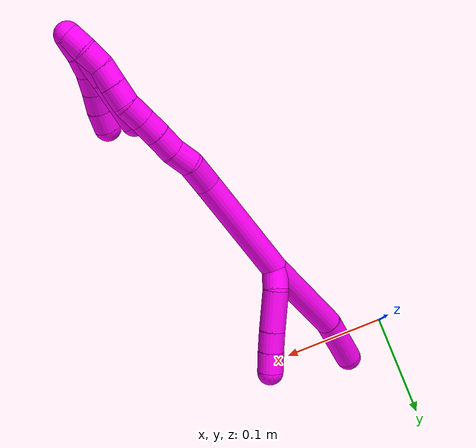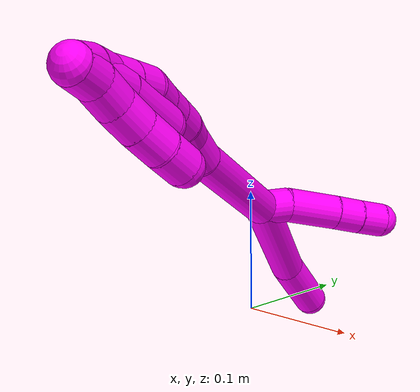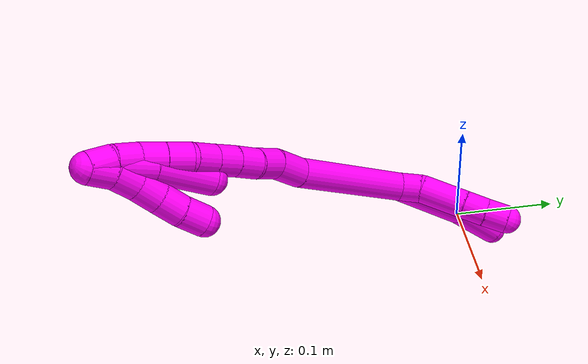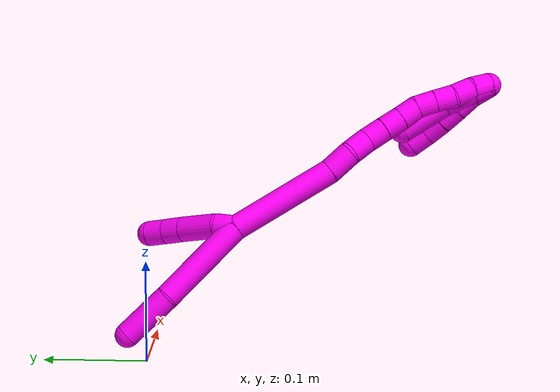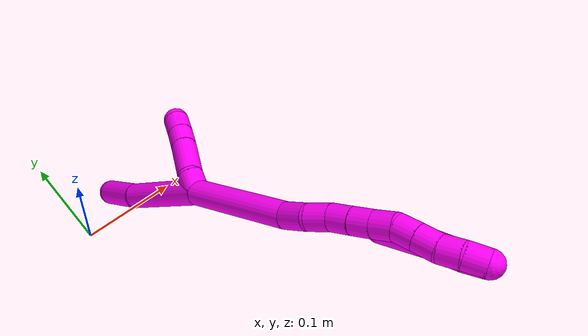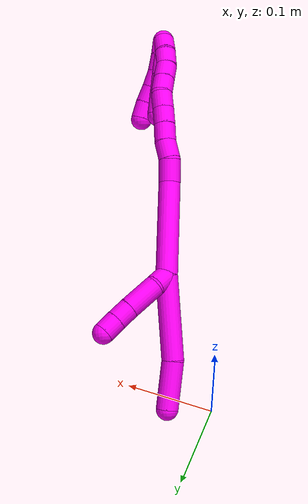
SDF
<sdf version="1.7">
 <world name="default">
  <model name="10">
   <static>0</static>
   <link name="10">
    <collision name="collision-cylinder-e_1_2_8">
     <pose>0.000406 -0.000766 -0.047744 3.12555 0.008507 0.975188</pose>
     <geometry><cylinder><radius>0.0125</radius><length>0.095505</length></cylinder></geometry>
     <surface>
      <friction><ode><mu>1.16</mu><mu2>1.16</mu2><slip1>0</slip1><slip2>0</slip2></ode></friction>
      <contact><ode><kp>1e+06</kp><kd>1</kd><max_vel>0</max_vel><min_depth>0.001</min_depth></ode></contact>
     </surface>
    </collision>
    <visual name="visual-cylinder-e_1_2_8">
     <pose>0.000406 -0.000766 -0.047744 3.12555 0.008507 0.975188</pose>
     <geometry><cylinder><radius>0.0125</radius><length>0.095505</length></cylinder></geometry>
     <material><ambient>1 0 0.964706 1</ambient></material>
    </visual>
    <collision name="collision-cylinder-e_2_8_6">
     <pose>0.005719 0.00039 -0.122222 -3.06983 0.181077 -2.38856</pose>
     <geometry><cylinder><radius>0.0125</radius><length>0.054495</length></cylinder></geometry>
     <surface>
      <friction><ode><mu>1.16</mu><mu2>1.16</mu2><slip1>0</slip1><slip2>0</slip2></ode></friction>
      <contact><ode><kp>1e+06</kp><kd>1</kd><max_vel>0</max_vel><min_depth>0.001</min_depth></ode></contact>
     </surface>
    </collision>
    <visual name="visual-cylinder-e_2_8_6">
     <pose>0.005719 0.00039 -0.122222 -3.06983 0.181077 -2.38856</pose>
     <geometry><cylinder><radius>0.0125</radius><length>0.054495</length></cylinder></geometry>
     <material><ambient>1 0 0.964706 1</ambient></material>
    </visual>
    <collision name="collision-cylinder-e_1_2_9">
     <pose>0.002044 0.008286 -0.00549 -2.15594 0.202794 -0.374484</pose>
     <geometry><cylinder><radius>0.0125</radius><length>0.020296</length></cylinder></geometry>
     <surface>
      <friction><ode><mu>1.16</mu><mu2>1.16</mu2><slip1>0</slip1><slip2>0</slip2></ode></friction>
      <contact><ode><kp>1e+06</kp><kd>1</kd><max_vel>0</max_vel><min_depth>0.001</min_depth></ode></contact>
     </surface>
    </collision>
    <visual name="visual-cylinder-e_1_2_9">
     <pose>0.002044 0.008286 -0.00549 -2.15594 0.202794 -0.374484</pose>
     <geometry><cylinder><radius>0.0125</radius><length>0.020296</length></cylinder></geometry>
     <material><ambient>1 0 0.964706 1</ambient></material>
    </visual>
    <collision name="collision-cylinder-e_2_9_10">
     <pose>0.012459 0.030172 -0.02275 -2.28419 0.435647 -0.901967</pose>
     <geometry><cylinder><radius>0.0125</radius><length>0.039676</length></cylinder></geometry>
     <surface>
      <friction><ode><mu>1.16</mu><mu2>1.16</mu2><slip1>0</slip1><slip2>0</slip2></ode></friction>
      <contact><ode><kp>1e+06</kp><kd>1</kd><max_vel>0</max_vel><min_depth>0.001</min_depth></ode></contact>
     </surface>
    </collision>
    <visual name="visual-cylinder-e_2_9_10">
     <pose>0.012459 0.030172 -0.02275 -2.28419 0.435647 -0.901967</pose>
     <geometry><cylinder><radius>0.0125</radius><length>0.039676</length></cylinder></geometry>
     <material><ambient>1 0 0.964706 1</ambient></material>
    </visual>
    <collision name="collision-cylinder-e_3_10_11">
     <pose>0.024926 0.050443 -0.040746 -2.32175 0.421769 -0.915474</pose>
     <geometry><cylinder><radius>0.0125</radius><length>0.020004</length></cylinder></geometry>
     <surface>
      <friction><ode><mu>1.16</mu><mu2>1.16</mu2><slip1>0</slip1><slip2>0</slip2></ode></friction>
      <contact><ode><kp>1e+06</kp><kd>1</kd><max_vel>0</max_vel><min_depth>0.001</min_depth></ode></contact>
     </surface>
    </collision>
    <visual name="visual-cylinder-e_3_10_11">
     <pose>0.024926 0.050443 -0.040746 -2.32175 0.421769 -0.915474</pose>
     <geometry><cylinder><radius>0.0125</radius><length>0.020004</length></cylinder></geometry>
     <material><ambient>1 0 0.964706 1</ambient></material>
    </visual>
    <collision name="collision-cylinder-e_4_11_5">
     <pose>0.032779 0.063879 -0.053324 -2.3246 0.384826 -0.845871</pose>
     <geometry><cylinder><radius>0.0125</radius><length>0.020024</length></cylinder></geometry>
     <surface>
      <friction><ode><mu>1.16</mu><mu2>1.16</mu2><slip1>0</slip1><slip2>0</slip2></ode></friction>
      <contact><ode><kp>1e+06</kp><kd>1</kd><max_vel>0</max_vel><min_depth>0.001</min_depth></ode></contact>
     </surface>
    </collision>
    <visual name="visual-cylinder-e_4_11_5">
     <pose>0.032779 0.063879 -0.053324 -2.3246 0.384826 -0.845871</pose>
     <geometry><cylinder><radius>0.0125</radius><length>0.020024</length></cylinder></geometry>
     <material><ambient>1 0 0.964706 1</ambient></material>
    </visual>
    <collision name="collision-cylinder-e_1_2_12">
     <pose>0.003166 -0.012155 0.053238 0.224469 0.057907 0.006528</pose>
     <geometry><cylinder><radius>0.0125</radius><length>0.109399</length></cylinder></geometry>
     <surface>
      <friction><ode><mu>1.16</mu><mu2>1.16</mu2><slip1>0</slip1><slip2>0</slip2></ode></friction>
      <contact><ode><kp>1e+06</kp><kd>1</kd><max_vel>0</max_vel><min_depth>0.001</min_depth></ode></contact>
     </surface>
    </collision>
    <visual name="visual-cylinder-e_1_2_12">
     <pose>0.003166 -0.012155 0.053238 0.224469 0.057907 0.006528</pose>
     <geometry><cylinder><radius>0.0125</radius><length>0.109399</length></cylinder></geometry>
     <material><ambient>1 0 0.964706 1</ambient></material>
    </visual>
    <collision name="collision-cylinder-e_2_12_13">
     <pose>0.005644 -0.025064 0.120101 0.055281 -0.050321 -0.001392</pose>
     <geometry><cylinder><radius>0.0125</radius><length>0.027327</length></cylinder></geometry>
     <surface>
      <friction><ode><mu>1.16</mu><mu2>1.16</mu2><slip1>0</slip1><slip2>0</slip2></ode></friction>
      <contact><ode><kp>1e+06</kp><kd>1</kd><max_vel>0</max_vel><min_depth>0.001</min_depth></ode></contact>
     </surface>
    </collision>
    <visual name="visual-cylinder-e_2_12_13">
     <pose>0.005644 -0.025064 0.120101 0.055281 -0.050321 -0.001392</pose>
     <geometry><cylinder><radius>0.0125</radius><length>0.027327</length></cylinder></geometry>
     <material><ambient>1 0 0.964706 1</ambient></material>
    </visual>
    <collision name="collision-cylinder-e_3_13_14">
     <pose>0.007637 -0.026345 0.144359 0.049505 0.24667 0.006138</pose>
     <geometry><cylinder><radius>0.0125</radius><length>0.021956</length></cylinder></geometry>
     <surface>
      <friction><ode><mu>1.16</mu><mu2>1.16</mu2><slip1>0</slip1><slip2>0</slip2></ode></friction>
      <contact><ode><kp>1e+06</kp><kd>1</kd><max_vel>0</max_vel><min_depth>0.001</min_depth></ode></contact>
     </surface>
    </collision>
    <visual name="visual-cylinder-e_3_13_14">
     <pose>0.007637 -0.026345 0.144359 0.049505 0.24667 0.006138</pose>
     <geometry><cylinder><radius>0.0125</radius><length>0.021956</length></cylinder></geometry>
     <material><ambient>1 0 0.964706 1</ambient></material>
    </visual>
    <collision name="collision-cylinder-e_4_14_15">
     <pose>0.01145 -0.028615 0.165237 0.168539 0.108494 0.009173</pose>
     <geometry><cylinder><radius>0.0125</radius><length>0.020909</length></cylinder></geometry>
     <surface>
      <friction><ode><mu>1.16</mu><mu2>1.16</mu2><slip1>0</slip1><slip2>0</slip2></ode></friction>
      <contact><ode><kp>1e+06</kp><kd>1</kd><max_vel>0</max_vel><min_depth>0.001</min_depth></ode></contact>
     </surface>
    </collision>
    <visual name="visual-cylinder-e_4_14_15">
     <pose>0.01145 -0.028615 0.165237 0.168539 0.108494 0.009173</pose>
     <geometry><cylinder><radius>0.0125</radius><length>0.020909</length></cylinder></geometry>
     <material><ambient>1 0 0.964706 1</ambient></material>
    </visual>
    <collision name="collision-cylinder-e_5_15_16">
     <pose>0.014139 -0.032047 0.185314 0.170086 0.154809 0.013223</pose>
     <geometry><cylinder><radius>0.0125</radius><length>0.020193</length></cylinder></geometry>
     <surface>
      <friction><ode><mu>1.16</mu><mu2>1.16</mu2><slip1>0</slip1><slip2>0</slip2></ode></friction>
      <contact><ode><kp>1e+06</kp><kd>1</kd><max_vel>0</max_vel><min_depth>0.001</min_depth></ode></contact>
     </surface>
    </collision>
    <visual name="visual-cylinder-e_5_15_16">
     <pose>0.014139 -0.032047 0.185314 0.170086 0.154809 0.013223</pose>
     <geometry><cylinder><radius>0.0125</radius><length>0.020193</length></cylinder></geometry>
     <material><ambient>1 0 0.964706 1</ambient></material>
    </visual>
    <collision name="collision-cylinder-e_6_16_17">
     <pose>0.017241 -0.035107 0.205031 0.137879 0.153644 0.01063</pose>
     <geometry><cylinder><radius>0.0125</radius><length>0.020197</length></cylinder></geometry>
     <surface>
      <friction><ode><mu>1.16</mu><mu2>1.16</mu2><slip1>0</slip1><slip2>0</slip2></ode></friction>
      <contact><ode><kp>1e+06</kp><kd>1</kd><max_vel>0</max_vel><min_depth>0.001</min_depth></ode></contact>
     </surface>
    </collision>
    <visual name="visual-cylinder-e_6_16_17">
     <pose>0.017241 -0.035107 0.205031 0.137879 0.153644 0.01063</pose>
     <geometry><cylinder><radius>0.0125</radius><length>0.020197</length></cylinder></geometry>
     <material><ambient>1 0 0.964706 1</ambient></material>
    </visual>
    <collision name="collision-cylinder-e_7_17_18">
     <pose>0.019853 -0.040828 0.223867 0.452317 0.106778 0.024591</pose>
     <geometry><cylinder><radius>0.0125</radius><length>0.020018</length></cylinder></geometry>
     <surface>
      <friction><ode><mu>1.16</mu><mu2>1.16</mu2><slip1>0</slip1><slip2>0</slip2></ode></friction>
      <contact><ode><kp>1e+06</kp><kd>1</kd><max_vel>0</max_vel><min_depth>0.001</min_depth></ode></contact>
     </surface>
    </collision>
    <visual name="visual-cylinder-e_7_17_18">
     <pose>0.019853 -0.040828 0.223867 0.452317 0.106778 0.024591</pose>
     <geometry><cylinder><radius>0.0125</radius><length>0.020018</length></cylinder></geometry>
     <material><ambient>1 0 0.964706 1</ambient></material>
    </visual>
    <collision name="collision-cylinder-e_8_18_19">
     <pose>0.022064 -0.049726 0.241651 0.475522 0.114634 0.02781</pose>
     <geometry><cylinder><radius>0.0125</radius><length>0.020001</length></cylinder></geometry>
     <surface>
      <friction><ode><mu>1.16</mu><mu2>1.16</mu2><slip1>0</slip1><slip2>0</slip2></ode></friction>
      <contact><ode><kp>1e+06</kp><kd>1</kd><max_vel>0</max_vel><min_depth>0.001</min_depth></ode></contact>
     </surface>
    </collision>
    <visual name="visual-cylinder-e_8_18_19">
     <pose>0.022064 -0.049726 0.241651 0.475522 0.114634 0.02781</pose>
     <geometry><cylinder><radius>0.0125</radius><length>0.020001</length></cylinder></geometry>
     <material><ambient>1 0 0.964706 1</ambient></material>
    </visual>
    <collision name="collision-cylinder-e_9_19_20">
     <pose>0.025595 -0.057189 0.259747 0.304818 0.241078 0.037206</pose>
     <geometry><cylinder><radius>0.0125</radius><length>0.02</length></cylinder></geometry>
     <surface>
      <friction><ode><mu>1.16</mu><mu2>1.16</mu2><slip1>0</slip1><slip2>0</slip2></ode></friction>
      <contact><ode><kp>1e+06</kp><kd>1</kd><max_vel>0</max_vel><min_depth>0.001</min_depth></ode></contact>
     </surface>
    </collision>
    <visual name="visual-cylinder-e_9_19_20">
     <pose>0.025595 -0.057189 0.259747 0.304818 0.241078 0.037206</pose>
     <geometry><cylinder><radius>0.0125</radius><length>0.02</length></cylinder></geometry>
     <material><ambient>1 0 0.964706 1</ambient></material>
    </visual>
    <collision name="collision-cylinder-e_10_20_1">
     <pose>0.031773 -0.063893 0.277453 0.421936 0.388715 0.084259</pose>
     <geometry><cylinder><radius>0.0125</radius><length>0.02</length></cylinder></geometry>
     <surface>
      <friction><ode><mu>1.16</mu><mu2>1.16</mu2><slip1>0</slip1><slip2>0</slip2></ode></friction>
      <contact><ode><kp>1e+06</kp><kd>1</kd><max_vel>0</max_vel><min_depth>0.001</min_depth></ode></contact>
     </surface>
    </collision>
    <visual name="visual-cylinder-e_10_20_1">
     <pose>0.031773 -0.063893 0.277453 0.421936 0.388715 0.084259</pose>
     <geometry><cylinder><radius>0.0125</radius><length>0.02</length></cylinder></geometry>
     <material><ambient>1 0 0.964706 1</ambient></material>
    </visual>
    <collision name="collision-cylinder-e_1_1_21">
     <pose>0.035777 -0.065049 0.276251 -2.87505 0.021394 -0.159248</pose>
     <geometry><cylinder><radius>0.0125</radius><length>0.02</length></cylinder></geometry>
     <surface>
      <friction><ode><mu>1.16</mu><mu2>1.16</mu2><slip1>0</slip1><slip2>0</slip2></ode></friction>
      <contact><ode><kp>1e+06</kp><kd>1</kd><max_vel>0</max_vel><min_depth>0.001</min_depth></ode></contact>
     </surface>
    </collision>
    <visual name="visual-cylinder-e_1_1_21">
     <pose>0.035777 -0.065049 0.276251 -2.87505 0.021394 -0.159248</pose>
     <geometry><cylinder><radius>0.0125</radius><length>0.02</length></cylinder></geometry>
     <material><ambient>1 0 0.964706 1</ambient></material>
    </visual>
    <collision name="collision-cylinder-e_2_21_22">
     <pose>0.038383 -0.061243 0.256967 -3.02047 0.24156 -2.21494</pose>
     <geometry><cylinder><radius>0.0125</radius><length>0.02</length></cylinder></geometry>
     <surface>
      <friction><ode><mu>1.16</mu><mu2>1.16</mu2><slip1>0</slip1><slip2>0</slip2></ode></friction>
      <contact><ode><kp>1e+06</kp><kd>1</kd><max_vel>0</max_vel><min_depth>0.001</min_depth></ode></contact>
     </surface>
    </collision>
    <visual name="visual-cylinder-e_2_21_22">
     <pose>0.038383 -0.061243 0.256967 -3.02047 0.24156 -2.21494</pose>
     <geometry><cylinder><radius>0.0125</radius><length>0.02</length></cylinder></geometry>
     <material><ambient>1 0 0.964706 1</ambient></material>
    </visual>
    <collision name="collision-cylinder-e_3_22_23">
     <pose>0.044435 -0.058363 0.238181 -2.95716 0.374736 -2.23395</pose>
     <geometry><cylinder><radius>0.0125</radius><length>0.02</length></cylinder></geometry>
     <surface>
      <friction><ode><mu>1.16</mu><mu2>1.16</mu2><slip1>0</slip1><slip2>0</slip2></ode></friction>
      <contact><ode><kp>1e+06</kp><kd>1</kd><max_vel>0</max_vel><min_depth>0.001</min_depth></ode></contact>
     </surface>
    </collision>
    <visual name="visual-cylinder-e_3_22_23">
     <pose>0.044435 -0.058363 0.238181 -2.95716 0.374736 -2.23395</pose>
     <geometry><cylinder><radius>0.0125</radius><length>0.02</length></cylinder></geometry>
     <material><ambient>1 0 0.964706 1</ambient></material>
    </visual>
    <collision name="collision-cylinder-e_4_23_24">
     <pose>0.051948 -0.054342 0.220099 -2.88808 0.395426 -2.00842</pose>
     <geometry><cylinder><radius>0.0125</radius><length>0.02</length></cylinder></geometry>
     <surface>
      <friction><ode><mu>1.16</mu><mu2>1.16</mu2><slip1>0</slip1><slip2>0</slip2></ode></friction>
      <contact><ode><kp>1e+06</kp><kd>1</kd><max_vel>0</max_vel><min_depth>0.001</min_depth></ode></contact>
     </surface>
    </collision>
    <visual name="visual-cylinder-e_4_23_24">
     <pose>0.051948 -0.054342 0.220099 -2.88808 0.395426 -2.00842</pose>
     <geometry><cylinder><radius>0.0125</radius><length>0.02</length></cylinder></geometry>
     <material><ambient>1 0 0.964706 1</ambient></material>
    </visual>
    <collision name="collision-cylinder-e_5_24_4">
     <pose>0.058365 -0.049627 0.201803 -2.89057 0.259469 -1.60425</pose>
     <geometry><cylinder><radius>0.0125</radius><length>0.02</length></cylinder></geometry>
     <surface>
      <friction><ode><mu>1.16</mu><mu2>1.16</mu2><slip1>0</slip1><slip2>0</slip2></ode></friction>
      <contact><ode><kp>1e+06</kp><kd>1</kd><max_vel>0</max_vel><min_depth>0.001</min_depth></ode></contact>
     </surface>
    </collision>
    <visual name="visual-cylinder-e_5_24_4">
     <pose>0.058365 -0.049627 0.201803 -2.89057 0.259469 -1.60425</pose>
     <geometry><cylinder><radius>0.0125</radius><length>0.02</length></cylinder></geometry>
     <material><ambient>1 0 0.964706 1</ambient></material>
    </visual>
    <collision name="collision-cylinder-e_1_1_25">
     <pose>0.032932 -0.064723 0.276676 -2.831 -0.265318 1.41171</pose>
     <geometry><cylinder><radius>0.0125</radius><length>0.020068</length></cylinder></geometry>
     <surface>
      <friction><ode><mu>1.16</mu><mu2>1.16</mu2><slip1>0</slip1><slip2>0</slip2></ode></friction>
      <contact><ode><kp>1e+06</kp><kd>1</kd><max_vel>0</max_vel><min_depth>0.001</min_depth></ode></contact>
     </surface>
    </collision>
    <visual name="visual-cylinder-e_1_1_25">
     <pose>0.032932 -0.064723 0.276676 -2.831 -0.265318 1.41171</pose>
     <geometry><cylinder><radius>0.0125</radius><length>0.020068</length></cylinder></geometry>
     <material><ambient>1 0 0.964706 1</ambient></material>
    </visual>
    <collision name="collision-cylinder-e_2_25_26">
     <pose>0.028901 -0.056386 0.252905 -2.78759 -0.089982 0.493141</pose>
     <geometry><cylinder><radius>0.0125</radius><length>0.031153</length></cylinder></geometry>
     <surface>
      <friction><ode><mu>1.16</mu><mu2>1.16</mu2><slip1>0</slip1><slip2>0</slip2></ode></friction>
      <contact><ode><kp>1e+06</kp><kd>1</kd><max_vel>0</max_vel><min_depth>0.001</min_depth></ode></contact>
     </surface>
    </collision>
    <visual name="visual-cylinder-e_2_25_26">
     <pose>0.028901 -0.056386 0.252905 -2.78759 -0.089982 0.493141</pose>
     <geometry><cylinder><radius>0.0125</radius><length>0.031153</length></cylinder></geometry>
     <material><ambient>1 0 0.964706 1</ambient></material>
    </visual>
    <collision name="collision-cylinder-e_3_26_3">
     <pose>0.028265 -0.045405 0.214628 -2.90965 0.031327 -0.267338</pose>
     <geometry><cylinder><radius>0.0125</radius><length>0.048779</length></cylinder></geometry>
     <surface>
      <friction><ode><mu>1.16</mu><mu2>1.16</mu2><slip1>0</slip1><slip2>0</slip2></ode></friction>
      <contact><ode><kp>1e+06</kp><kd>1</kd><max_vel>0</max_vel><min_depth>0.001</min_depth></ode></contact>
     </surface>
    </collision>
    <visual name="visual-cylinder-e_3_26_3">
     <pose>0.028265 -0.045405 0.214628 -2.90965 0.031327 -0.267338</pose>
     <geometry><cylinder><radius>0.0125</radius><length>0.048779</length></cylinder></geometry>
     <material><ambient>1 0 0.964706 1</ambient></material>
    </visual>
    <collision name="collision-sphere-3">
     <pose>0.029029 -0.039801 0.190903 0 -0 0</pose>
     <geometry><sphere><radius>0.0125</radius></sphere></geometry>
     <surface>
      <friction><ode><mu>1.16</mu><mu2>1.16</mu2><slip1>0</slip1><slip2>0</slip2></ode></friction>
      <contact><ode><kp>1e+06</kp><kd>1</kd><max_vel>0</max_vel><min_depth>0.001</min_depth></ode></contact>
     </surface>
    </collision>
    <visual name="visual-sphere-3">
     <pose>0.029029 -0.039801 0.190903 0 -0 0</pose>
     <geometry><sphere><radius>0.0125</radius></sphere></geometry>
     <material><ambient>1 0 0.964706 1</ambient></material>
    </visual>
    <collision name="collision-sphere-26">
     <pose>0.027501 -0.051008 0.238353 0 -0 0</pose>
     <geometry><sphere><radius>0.0125</radius></sphere></geometry>
     <surface>
      <friction><ode><mu>1.16</mu><mu2>1.16</mu2><slip1>0</slip1><slip2>0</slip2></ode></friction>
      <contact><ode><kp>1e+06</kp><kd>1</kd><max_vel>0</max_vel><min_depth>0.001</min_depth></ode></contact>
     </surface>
    </collision>
    <visual name="visual-sphere-26">
     <pose>0.027501 -0.051008 0.238353 0 -0 0</pose>
     <geometry><sphere><radius>0.0125</radius></sphere></geometry>
     <material><ambient>1 0 0.964706 1</ambient></material>
    </visual>
    <collision name="collision-sphere-25">
     <pose>0.030301 -0.061764 0.267456 0 -0 0</pose>
     <geometry><sphere><radius>0.0125</radius></sphere></geometry>
     <surface>
      <friction><ode><mu>1.16</mu><mu2>1.16</mu2><slip1>0</slip1><slip2>0</slip2></ode></friction>
      <contact><ode><kp>1e+06</kp><kd>1</kd><max_vel>0</max_vel><min_depth>0.001</min_depth></ode></contact>
     </surface>
    </collision>
    <visual name="visual-sphere-25">
     <pose>0.030301 -0.061764 0.267456 0 -0 0</pose>
     <geometry><sphere><radius>0.0125</radius></sphere></geometry>
     <material><ambient>1 0 0.964706 1</ambient></material>
    </visual>
    <collision name="collision-sphere-4">
     <pose>0.060931 -0.047226 0.192441 0 -0 0</pose>
     <geometry><sphere><radius>0.0125</radius></sphere></geometry>
     <surface>
      <friction><ode><mu>1.16</mu><mu2>1.16</mu2><slip1>0</slip1><slip2>0</slip2></ode></friction>
      <contact><ode><kp>1e+06</kp><kd>1</kd><max_vel>0</max_vel><min_depth>0.001</min_depth></ode></contact>
     </surface>
    </collision>
    <visual name="visual-sphere-4">
     <pose>0.060931 -0.047226 0.192441 0 -0 0</pose>
     <geometry><sphere><radius>0.0125</radius></sphere></geometry>
     <material><ambient>1 0 0.964706 1</ambient></material>
    </visual>
    <collision name="collision-sphere-24">
     <pose>0.0558 -0.052027 0.211166 0 -0 0</pose>
     <geometry><sphere><radius>0.0125</radius></sphere></geometry>
     <surface>
      <friction><ode><mu>1.16</mu><mu2>1.16</mu2><slip1>0</slip1><slip2>0</slip2></ode></friction>
      <contact><ode><kp>1e+06</kp><kd>1</kd><max_vel>0</max_vel><min_depth>0.001</min_depth></ode></contact>
     </surface>
    </collision>
    <visual name="visual-sphere-24">
     <pose>0.0558 -0.052027 0.211166 0 -0 0</pose>
     <geometry><sphere><radius>0.0125</radius></sphere></geometry>
     <material><ambient>1 0 0.964706 1</ambient></material>
    </visual>
    <collision name="collision-sphere-23">
     <pose>0.048096 -0.056656 0.229032 0 -0 0</pose>
     <geometry><sphere><radius>0.0125</radius></sphere></geometry>
     <surface>
      <friction><ode><mu>1.16</mu><mu2>1.16</mu2><slip1>0</slip1><slip2>0</slip2></ode></friction>
      <contact><ode><kp>1e+06</kp><kd>1</kd><max_vel>0</max_vel><min_depth>0.001</min_depth></ode></contact>
     </surface>
    </collision>
    <visual name="visual-sphere-23">
     <pose>0.048096 -0.056656 0.229032 0 -0 0</pose>
     <geometry><sphere><radius>0.0125</radius></sphere></geometry>
     <material><ambient>1 0 0.964706 1</ambient></material>
    </visual>
    <collision name="collision-sphere-22">
     <pose>0.040775 -0.06007 0.247329 0 -0 0</pose>
     <geometry><sphere><radius>0.0125</radius></sphere></geometry>
     <surface>
      <friction><ode><mu>1.16</mu><mu2>1.16</mu2><slip1>0</slip1><slip2>0</slip2></ode></friction>
      <contact><ode><kp>1e+06</kp><kd>1</kd><max_vel>0</max_vel><min_depth>0.001</min_depth></ode></contact>
     </surface>
    </collision>
    <visual name="visual-sphere-22">
     <pose>0.040775 -0.06007 0.247329 0 -0 0</pose>
     <geometry><sphere><radius>0.0125</radius></sphere></geometry>
     <material><ambient>1 0 0.964706 1</ambient></material>
    </visual>
    <collision name="collision-sphere-21">
     <pose>0.035991 -0.062416 0.266606 0 -0 0</pose>
     <geometry><sphere><radius>0.0125</radius></sphere></geometry>
     <surface>
      <friction><ode><mu>1.16</mu><mu2>1.16</mu2><slip1>0</slip1><slip2>0</slip2></ode></friction>
      <contact><ode><kp>1e+06</kp><kd>1</kd><max_vel>0</max_vel><min_depth>0.001</min_depth></ode></contact>
     </surface>
    </collision>
    <visual name="visual-sphere-21">
     <pose>0.035991 -0.062416 0.266606 0 -0 0</pose>
     <geometry><sphere><radius>0.0125</radius></sphere></geometry>
     <material><ambient>1 0 0.964706 1</ambient></material>
    </visual>
    <collision name="collision-sphere-1">
     <pose>0.035563 -0.067683 0.285895 0 -0 0</pose>
     <geometry><sphere><radius>0.0125</radius></sphere></geometry>
     <surface>
      <friction><ode><mu>1.16</mu><mu2>1.16</mu2><slip1>0</slip1><slip2>0</slip2></ode></friction>
      <contact><ode><kp>1e+06</kp><kd>1</kd><max_vel>0</max_vel><min_depth>0.001</min_depth></ode></contact>
     </surface>
    </collision>
    <visual name="visual-sphere-1">
     <pose>0.035563 -0.067683 0.285895 0 -0 0</pose>
     <geometry><sphere><radius>0.0125</radius></sphere></geometry>
     <material><ambient>1 0 0.964706 1</ambient></material>
    </visual>
    <collision name="collision-sphere-11">
     <pose>0.02902 0.057114 -0.046973 0 -0 0</pose>
     <geometry><sphere><radius>0.0125</radius></sphere></geometry>
     <surface>
      <friction><ode><mu>1.16</mu><mu2>1.16</mu2><slip1>0</slip1><slip2>0</slip2></ode></friction>
      <contact><ode><kp>1e+06</kp><kd>1</kd><max_vel>0</max_vel><min_depth>0.001</min_depth></ode></contact>
     </surface>
    </collision>
    <visual name="visual-sphere-11">
     <pose>0.02902 0.057114 -0.046973 0 -0 0</pose>
     <geometry><sphere><radius>0.0125</radius></sphere></geometry>
     <material><ambient>1 0 0.964706 1</ambient></material>
    </visual>
    <collision name="collision-sphere-10">
     <pose>0.020831 0.043772 -0.034519 0 -0 0</pose>
     <geometry><sphere><radius>0.0125</radius></sphere></geometry>
     <surface>
      <friction><ode><mu>1.16</mu><mu2>1.16</mu2><slip1>0</slip1><slip2>0</slip2></ode></friction>
      <contact><ode><kp>1e+06</kp><kd>1</kd><max_vel>0</max_vel><min_depth>0.001</min_depth></ode></contact>
     </surface>
    </collision>
    <visual name="visual-sphere-10">
     <pose>0.020831 0.043772 -0.034519 0 -0 0</pose>
     <geometry><sphere><radius>0.0125</radius></sphere></geometry>
     <material><ambient>1 0 0.964706 1</ambient></material>
    </visual>
    <collision name="collision-sphere-6">
     <pose>0.010626 0.002311 -0.148955 0 -0 0</pose>
     <geometry><sphere><radius>0.0125</radius></sphere></geometry>
     <surface>
      <friction><ode><mu>1.16</mu><mu2>1.16</mu2><slip1>0</slip1><slip2>0</slip2></ode></friction>
      <contact><ode><kp>1e+06</kp><kd>1</kd><max_vel>0</max_vel><min_depth>0.001</min_depth></ode></contact>
     </surface>
    </collision>
    <visual name="visual-sphere-6">
     <pose>0.010626 0.002311 -0.148955 0 -0 0</pose>
     <geometry><sphere><radius>0.0125</radius></sphere></geometry>
     <material><ambient>1 0 0.964706 1</ambient></material>
    </visual>
    <collision name="collision-sphere-9">
     <pose>0.004088 0.016573 -0.01098 0 -0 0</pose>
     <geometry><sphere><radius>0.0125</radius></sphere></geometry>
     <surface>
      <friction><ode><mu>1.16</mu><mu2>1.16</mu2><slip1>0</slip1><slip2>0</slip2></ode></friction>
      <contact><ode><kp>1e+06</kp><kd>1</kd><max_vel>0</max_vel><min_depth>0.001</min_depth></ode></contact>
     </surface>
    </collision>
    <visual name="visual-sphere-9">
     <pose>0.004088 0.016573 -0.01098 0 -0 0</pose>
     <geometry><sphere><radius>0.0125</radius></sphere></geometry>
     <material><ambient>1 0 0.964706 1</ambient></material>
    </visual>
    <collision name="collision-sphere-2">
     <geometry><sphere><radius>0.0125</radius></sphere></geometry>
     <surface>
      <friction><ode><mu>1.16</mu><mu2>1.16</mu2><slip1>0</slip1><slip2>0</slip2></ode></friction>
      <contact><ode><kp>1e+06</kp><kd>1</kd><max_vel>0</max_vel><min_depth>0.001</min_depth></ode></contact>
     </surface>
    </collision>
    <visual name="visual-sphere-2">
     <geometry><sphere><radius>0.0125</radius></sphere></geometry>
     <material><ambient>1 0 0.964706 1</ambient></material>
    </visual>
    <collision name="collision-sphere-19">
     <pose>0.023208 -0.054274 0.250484 0 -0 0</pose>
     <geometry><sphere><radius>0.0125</radius></sphere></geometry>
     <surface>
      <friction><ode><mu>1.16</mu><mu2>1.16</mu2><slip1>0</slip1><slip2>0</slip2></ode></friction>
      <contact><ode><kp>1e+06</kp><kd>1</kd><max_vel>0</max_vel><min_depth>0.001</min_depth></ode></contact>
     </surface>
    </collision>
    <visual name="visual-sphere-19">
     <pose>0.023208 -0.054274 0.250484 0 -0 0</pose>
     <geometry><sphere><radius>0.0125</radius></sphere></geometry>
     <material><ambient>1 0 0.964706 1</ambient></material>
    </visual>
    <collision name="collision-sphere-8">
     <pose>0.000812 -0.001532 -0.095489 0 -0 0</pose>
     <geometry><sphere><radius>0.0125</radius></sphere></geometry>
     <surface>
      <friction><ode><mu>1.16</mu><mu2>1.16</mu2><slip1>0</slip1><slip2>0</slip2></ode></friction>
      <contact><ode><kp>1e+06</kp><kd>1</kd><max_vel>0</max_vel><min_depth>0.001</min_depth></ode></contact>
     </surface>
    </collision>
    <visual name="visual-sphere-8">
     <pose>0.000812 -0.001532 -0.095489 0 -0 0</pose>
     <geometry><sphere><radius>0.0125</radius></sphere></geometry>
     <material><ambient>1 0 0.964706 1</ambient></material>
    </visual>
    <collision name="collision-sphere-5">
     <pose>0.036537 0.070645 -0.059675 0 -0 0</pose>
     <geometry><sphere><radius>0.0125</radius></sphere></geometry>
     <surface>
      <friction><ode><mu>1.16</mu><mu2>1.16</mu2><slip1>0</slip1><slip2>0</slip2></ode></friction>
      <contact><ode><kp>1e+06</kp><kd>1</kd><max_vel>0</max_vel><min_depth>0.001</min_depth></ode></contact>
     </surface>
    </collision>
    <visual name="visual-sphere-5">
     <pose>0.036537 0.070645 -0.059675 0 -0 0</pose>
     <geometry><sphere><radius>0.0125</radius></sphere></geometry>
     <material><ambient>1 0 0.964706 1</ambient></material>
    </visual>
    <collision name="collision-sphere-12">
     <pose>0.006331 -0.02431 0.106476 0 -0 0</pose>
     <geometry><sphere><radius>0.0125</radius></sphere></geometry>
     <surface>
      <friction><ode><mu>1.16</mu><mu2>1.16</mu2><slip1>0</slip1><slip2>0</slip2></ode></friction>
      <contact><ode><kp>1e+06</kp><kd>1</kd><max_vel>0</max_vel><min_depth>0.001</min_depth></ode></contact>
     </surface>
    </collision>
    <visual name="visual-sphere-12">
     <pose>0.006331 -0.02431 0.106476 0 -0 0</pose>
     <geometry><sphere><radius>0.0125</radius></sphere></geometry>
     <material><ambient>1 0 0.964706 1</ambient></material>
    </visual>
    <collision name="collision-sphere-13">
     <pose>0.004957 -0.025818 0.133726 0 -0 0</pose>
     <geometry><sphere><radius>0.0125</radius></sphere></geometry>
     <surface>
      <friction><ode><mu>1.16</mu><mu2>1.16</mu2><slip1>0</slip1><slip2>0</slip2></ode></friction>
      <contact><ode><kp>1e+06</kp><kd>1</kd><max_vel>0</max_vel><min_depth>0.001</min_depth></ode></contact>
     </surface>
    </collision>
    <visual name="visual-sphere-13">
     <pose>0.004957 -0.025818 0.133726 0 -0 0</pose>
     <geometry><sphere><radius>0.0125</radius></sphere></geometry>
     <material><ambient>1 0 0.964706 1</ambient></material>
    </visual>
    <collision name="collision-sphere-14">
     <pose>0.010318 -0.026872 0.154991 0 -0 0</pose>
     <geometry><sphere><radius>0.0125</radius></sphere></geometry>
     <surface>
      <friction><ode><mu>1.16</mu><mu2>1.16</mu2><slip1>0</slip1><slip2>0</slip2></ode></friction>
      <contact><ode><kp>1e+06</kp><kd>1</kd><max_vel>0</max_vel><min_depth>0.001</min_depth></ode></contact>
     </surface>
    </collision>
    <visual name="visual-sphere-14">
     <pose>0.010318 -0.026872 0.154991 0 -0 0</pose>
     <geometry><sphere><radius>0.0125</radius></sphere></geometry>
     <material><ambient>1 0 0.964706 1</ambient></material>
    </visual>
    <collision name="collision-sphere-15">
     <pose>0.012582 -0.030358 0.175483 0 -0 0</pose>
     <geometry><sphere><radius>0.0125</radius></sphere></geometry>
     <surface>
      <friction><ode><mu>1.16</mu><mu2>1.16</mu2><slip1>0</slip1><slip2>0</slip2></ode></friction>
      <contact><ode><kp>1e+06</kp><kd>1</kd><max_vel>0</max_vel><min_depth>0.001</min_depth></ode></contact>
     </surface>
    </collision>
    <visual name="visual-sphere-15">
     <pose>0.012582 -0.030358 0.175483 0 -0 0</pose>
     <geometry><sphere><radius>0.0125</radius></sphere></geometry>
     <material><ambient>1 0 0.964706 1</ambient></material>
    </visual>
    <collision name="collision-sphere-16">
     <pose>0.015696 -0.033735 0.195146 0 -0 0</pose>
     <geometry><sphere><radius>0.0125</radius></sphere></geometry>
     <surface>
      <friction><ode><mu>1.16</mu><mu2>1.16</mu2><slip1>0</slip1><slip2>0</slip2></ode></friction>
      <contact><ode><kp>1e+06</kp><kd>1</kd><max_vel>0</max_vel><min_depth>0.001</min_depth></ode></contact>
     </surface>
    </collision>
    <visual name="visual-sphere-16">
     <pose>0.015696 -0.033735 0.195146 0 -0 0</pose>
     <geometry><sphere><radius>0.0125</radius></sphere></geometry>
     <material><ambient>1 0 0.964706 1</ambient></material>
    </visual>
    <collision name="collision-sphere-17">
     <pose>0.018786 -0.036479 0.214916 0 -0 0</pose>
     <geometry><sphere><radius>0.0125</radius></sphere></geometry>
     <surface>
      <friction><ode><mu>1.16</mu><mu2>1.16</mu2><slip1>0</slip1><slip2>0</slip2></ode></friction>
      <contact><ode><kp>1e+06</kp><kd>1</kd><max_vel>0</max_vel><min_depth>0.001</min_depth></ode></contact>
     </surface>
    </collision>
    <visual name="visual-sphere-17">
     <pose>0.018786 -0.036479 0.214916 0 -0 0</pose>
     <geometry><sphere><radius>0.0125</radius></sphere></geometry>
     <material><ambient>1 0 0.964706 1</ambient></material>
    </visual>
    <collision name="collision-sphere-18">
     <pose>0.02092 -0.045178 0.232818 0 -0 0</pose>
     <geometry><sphere><radius>0.0125</radius></sphere></geometry>
     <surface>
      <friction><ode><mu>1.16</mu><mu2>1.16</mu2><slip1>0</slip1><slip2>0</slip2></ode></friction>
      <contact><ode><kp>1e+06</kp><kd>1</kd><max_vel>0</max_vel><min_depth>0.001</min_depth></ode></contact>
     </surface>
    </collision>
    <visual name="visual-sphere-18">
     <pose>0.02092 -0.045178 0.232818 0 -0 0</pose>
     <geometry><sphere><radius>0.0125</radius></sphere></geometry>
     <material><ambient>1 0 0.964706 1</ambient></material>
    </visual>
    <collision name="collision-sphere-20">
     <pose>0.027983 -0.060103 0.26901 0 -0 0</pose>
     <geometry><sphere><radius>0.0125</radius></sphere></geometry>
     <surface>
      <friction><ode><mu>1.16</mu><mu2>1.16</mu2><slip1>0</slip1><slip2>0</slip2></ode></friction>
      <contact><ode><kp>1e+06</kp><kd>1</kd><max_vel>0</max_vel><min_depth>0.001</min_depth></ode></contact>
     </surface>
    </collision>
    <visual name="visual-sphere-20">
     <pose>0.027983 -0.060103 0.26901 0 -0 0</pose>
     <geometry><sphere><radius>0.0125</radius></sphere></geometry>
     <material><ambient>1 0 0.964706 1</ambient></material>
    </visual>
    <inertial>
     <pose>0.017449 -0.02163 0.103095 0 -0 0</pose>
     <mass>0.75</mass>
     <inertia>
      <ixx>0.000229</ixx>
      <ixy>0</ixy>
      <ixz>0</ixz>
      <iyy>0.000124</iyy>
      <iyz>0</iyz>
      <izz>-1.2e-05</izz>
     </inertia>
    </inertial>
   </link>
   <pose>0.085004 -0.079919 0.111567 0.719689 0.557316 -0.088014</pose>
  </model>
 </world>
</sdf>
